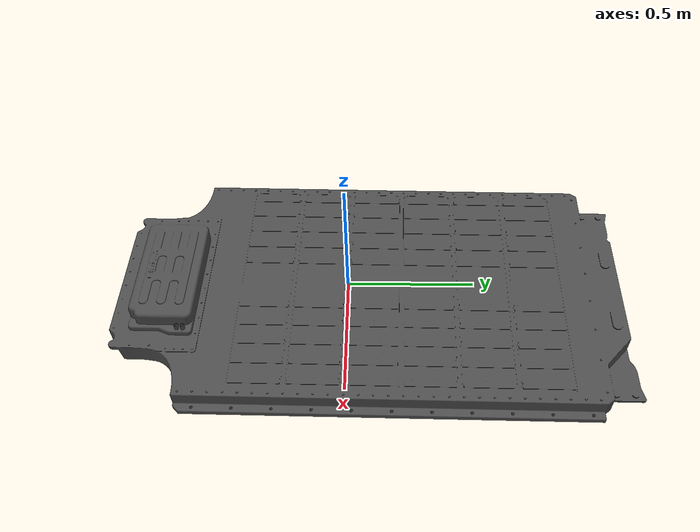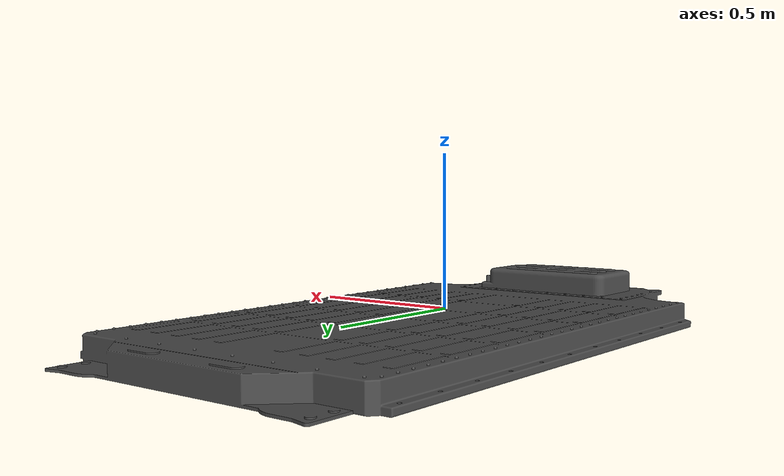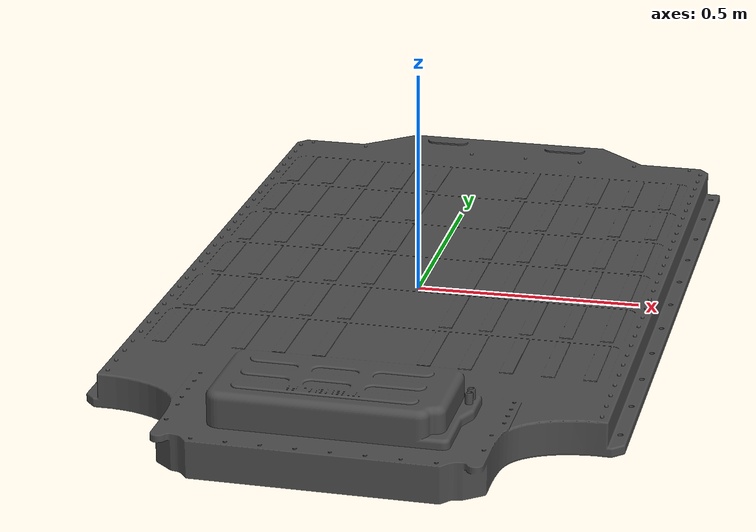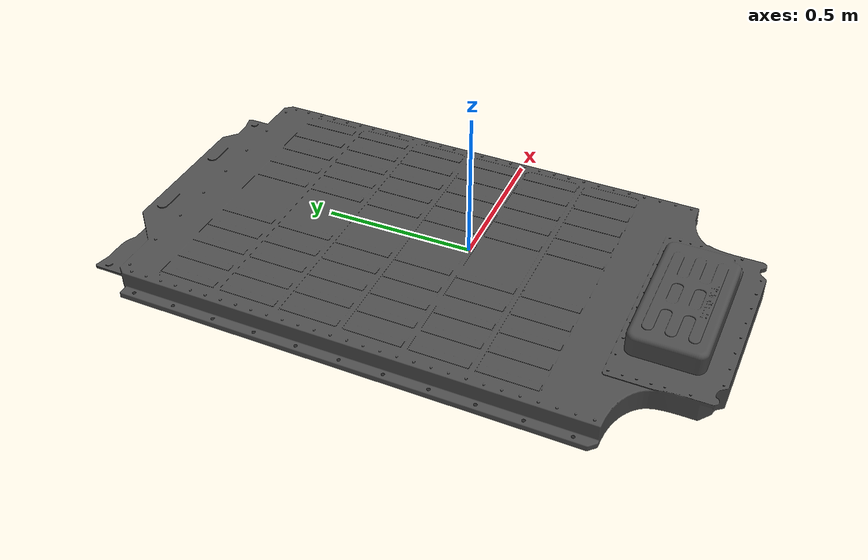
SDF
<?xml version="1.0"?>

<sdf version="1.5">
  <model name="tesla_battery_v2">
    <static>false</static>

    <link name="link0">

      <collision name="collision">
        <pose>0 0.15 -0.05445 0 0 0</pose>
        <geometry>
          <!-- was y=1.68 -->
          <box>
            <size>1.0 1.9 0.12</size>
          </box>
        </geometry>
        <surface>
          <friction>
            <ode>
              <mu>1.0</mu>
              <mu2>1.0</mu2>
            </ode>
          </friction>
        </surface>
      </collision>

      <visual name="visual">
        <geometry>
          <mesh>
            <uri>model://tesla_battery_v2/meshes/tesla_batteryv2.dae</uri>
          </mesh>
        </geometry>
        <material>
          <script>
            <uri>file://media/materials/scripts/gazebo.material</uri>
            <name>Gazebo/DarkGrey</name>
          </script>
        </material>
      </visual>

    </link>
  </model>
</sdf>
